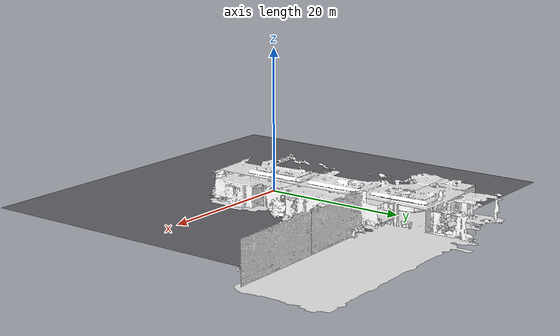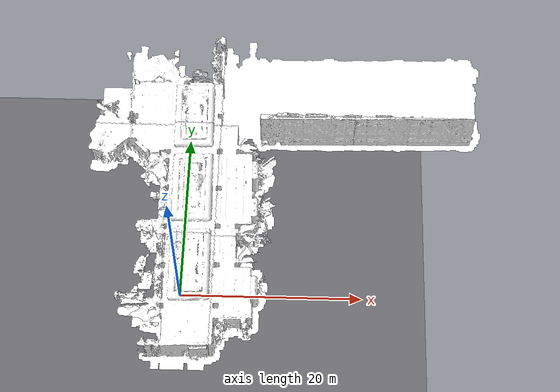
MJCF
<?xml version="1.0" encoding="UTF-8"?>
<mujoco model="mj_3dgs_15f">
  <compiler angle="radian" autolimits="true" texturedir="assets/"/>
  <option timestep="0.002" integrator="implicitfast" cone="elliptic" impratio="10"
          sdf_iterations="10" sdf_initpoints="20"/>

  <visual>
    <global offwidth="2400" offheight="1400"/>
    <headlight ambient="1.0 1.0 1.0" diffuse="0.0 0.0 0.0" specular="0 0 0"/>
    <quality shadowsize="4096"/>
  </visual>

  <extension>
    <plugin plugin="sdfvoxel.grid">
      <instance name="tile_00_00"><config key="path" value="assets/sdf/tile_00_00.npz"/></instance>
      <instance name="tile_00_01"><config key="path" value="assets/sdf/tile_00_01.npz"/></instance>
      <instance name="tile_00_02"><config key="path" value="assets/sdf/tile_00_02.npz"/></instance>
      <instance name="tile_00_03"><config key="path" value="assets/sdf/tile_00_03.npz"/></instance>
      <instance name="tile_00_04"><config key="path" value="assets/sdf/tile_00_04.npz"/></instance>
      <instance name="tile_00_05"><config key="path" value="assets/sdf/tile_00_05.npz"/></instance>
      <instance name="tile_01_00"><config key="path" value="assets/sdf/tile_01_00.npz"/></instance>
      <instance name="tile_01_01"><config key="path" value="assets/sdf/tile_01_01.npz"/></instance>
      <instance name="tile_01_02"><config key="path" value="assets/sdf/tile_01_02.npz"/></instance>
      <instance name="tile_01_03"><config key="path" value="assets/sdf/tile_01_03.npz"/></instance>
      <instance name="tile_01_04"><config key="path" value="assets/sdf/tile_01_04.npz"/></instance>
      <instance name="tile_01_05"><config key="path" value="assets/sdf/tile_01_05.npz"/></instance>
      <instance name="tile_02_00"><config key="path" value="assets/sdf/tile_02_00.npz"/></instance>
      <instance name="tile_02_01"><config key="path" value="assets/sdf/tile_02_01.npz"/></instance>
      <instance name="tile_02_02"><config key="path" value="assets/sdf/tile_02_02.npz"/></instance>
      <instance name="tile_02_03"><config key="path" value="assets/sdf/tile_02_03.npz"/></instance>
      <instance name="tile_02_04"><config key="path" value="assets/sdf/tile_02_04.npz"/></instance>
      <instance name="tile_02_05"><config key="path" value="assets/sdf/tile_02_05.npz"/></instance>
      <instance name="tile_03_00"><config key="path" value="assets/sdf/tile_03_00.npz"/></instance>
      <instance name="tile_03_01"><config key="path" value="assets/sdf/tile_03_01.npz"/></instance>
      <instance name="tile_03_02"><config key="path" value="assets/sdf/tile_03_02.npz"/></instance>
      <instance name="tile_03_03"><config key="path" value="assets/sdf/tile_03_03.npz"/></instance>
      <instance name="tile_03_04"><config key="path" value="assets/sdf/tile_03_04.npz"/></instance>
      <instance name="tile_03_05"><config key="path" value="assets/sdf/tile_03_05.npz"/></instance>
      <instance name="tile_04_00"><config key="path" value="assets/sdf/tile_04_00.npz"/></instance>
      <instance name="tile_04_01"><config key="path" value="assets/sdf/tile_04_01.npz"/></instance>
      <instance name="tile_04_02"><config key="path" value="assets/sdf/tile_04_02.npz"/></instance>
      <instance name="tile_04_03"><config key="path" value="assets/sdf/tile_04_03.npz"/></instance>
      <instance name="tile_04_04"><config key="path" value="assets/sdf/tile_04_04.npz"/></instance>
      <instance name="tile_04_05"><config key="path" value="assets/sdf/tile_04_05.npz"/></instance>
      <instance name="tile_05_00"><config key="path" value="assets/sdf/tile_05_00.npz"/></instance>
      <instance name="tile_05_01"><config key="path" value="assets/sdf/tile_05_01.npz"/></instance>
      <instance name="tile_05_02"><config key="path" value="assets/sdf/tile_05_02.npz"/></instance>
      <instance name="tile_05_03"><config key="path" value="assets/sdf/tile_05_03.npz"/></instance>
      <instance name="tile_05_04"><config key="path" value="assets/sdf/tile_05_04.npz"/></instance>
      <instance name="tile_05_05"><config key="path" value="assets/sdf/tile_05_05.npz"/></instance>
    </plugin>
  </extension>

  <default>
    <!-- passive environment: the robot carries conaffinity=1 and collides with
         this; the scene never self-collides. -->
    <default class="sdfcol">
      <geom group="3" contype="1" conaffinity="0" condim="3" friction="1 0.005 0.0001"
            solref="0.004 1" solimp="0.95 0.99 0.001" rgba="0.9 0.25 0.22 0.45"/>
    </default>
    <default class="vis">
      <geom group="0" contype="0" conaffinity="0" rgba="1 1 1 1"/>
    </default>
  </default>

  <asset>
    <texture name="fp_tex" type="2d" file="CH_floorpatch.png"/>
    <texture name="atlas" type="2d" file="CH_atlas.png"/>
    <material name="fp_mat" texture="fp_tex" specular="0" shininess="0" reflectance="0"/>
    <material name="scene_mat" texture="atlas" specular="0" shininess="0" reflectance="0"/>
    <mesh name="visual00" file="assets/vis_chunks/chunk_00_00.obj"/>
    <mesh name="visual01" file="assets/vis_chunks/chunk_00_01.obj"/>
    <mesh name="visual02" file="assets/vis_chunks/chunk_00_02.obj"/>
    <mesh name="visual03" file="assets/vis_chunks/chunk_01_00.obj"/>
    <mesh name="visual04" file="assets/vis_chunks/chunk_01_01.obj"/>
    <mesh name="visual05" file="assets/vis_chunks/chunk_01_02.obj"/>
    <mesh name="visual06" file="assets/vis_chunks/chunk_02_01.obj"/>
    <mesh name="visual07" file="assets/vis_chunks/chunk_02_02.obj"/>
    <mesh name="floorpatch" file="assets/CH_floorpatch.obj"/>
    <mesh name="m_tile_00_00"><plugin instance="tile_00_00"/></mesh>
    <mesh name="m_tile_00_01"><plugin instance="tile_00_01"/></mesh>
    <mesh name="m_tile_00_02"><plugin instance="tile_00_02"/></mesh>
    <mesh name="m_tile_00_03"><plugin instance="tile_00_03"/></mesh>
    <mesh name="m_tile_00_04"><plugin instance="tile_00_04"/></mesh>
    <mesh name="m_tile_00_05"><plugin instance="tile_00_05"/></mesh>
    <mesh name="m_tile_01_00"><plugin instance="tile_01_00"/></mesh>
    <mesh name="m_tile_01_01"><plugin instance="tile_01_01"/></mesh>
    <mesh name="m_tile_01_02"><plugin instance="tile_01_02"/></mesh>
    <mesh name="m_tile_01_03"><plugin instance="tile_01_03"/></mesh>
    <mesh name="m_tile_01_04"><plugin instance="tile_01_04"/></mesh>
    <mesh name="m_tile_01_05"><plugin instance="tile_01_05"/></mesh>
    <mesh name="m_tile_02_00"><plugin instance="tile_02_00"/></mesh>
    <mesh name="m_tile_02_01"><plugin instance="tile_02_01"/></mesh>
    <mesh name="m_tile_02_02"><plugin instance="tile_02_02"/></mesh>
    <mesh name="m_tile_02_03"><plugin instance="tile_02_03"/></mesh>
    <mesh name="m_tile_02_04"><plugin instance="tile_02_04"/></mesh>
    <mesh name="m_tile_02_05"><plugin instance="tile_02_05"/></mesh>
    <mesh name="m_tile_03_00"><plugin instance="tile_03_00"/></mesh>
    <mesh name="m_tile_03_01"><plugin instance="tile_03_01"/></mesh>
    <mesh name="m_tile_03_02"><plugin instance="tile_03_02"/></mesh>
    <mesh name="m_tile_03_03"><plugin instance="tile_03_03"/></mesh>
    <mesh name="m_tile_03_04"><plugin instance="tile_03_04"/></mesh>
    <mesh name="m_tile_03_05"><plugin instance="tile_03_05"/></mesh>
    <mesh name="m_tile_04_00"><plugin instance="tile_04_00"/></mesh>
    <mesh name="m_tile_04_01"><plugin instance="tile_04_01"/></mesh>
    <mesh name="m_tile_04_02"><plugin instance="tile_04_02"/></mesh>
    <mesh name="m_tile_04_03"><plugin instance="tile_04_03"/></mesh>
    <mesh name="m_tile_04_04"><plugin instance="tile_04_04"/></mesh>
    <mesh name="m_tile_04_05"><plugin instance="tile_04_05"/></mesh>
    <mesh name="m_tile_05_00"><plugin instance="tile_05_00"/></mesh>
    <mesh name="m_tile_05_01"><plugin instance="tile_05_01"/></mesh>
    <mesh name="m_tile_05_02"><plugin instance="tile_05_02"/></mesh>
    <mesh name="m_tile_05_03"><plugin instance="tile_05_03"/></mesh>
    <mesh name="m_tile_05_04"><plugin instance="tile_05_04"/></mesh>
    <mesh name="m_tile_05_05"><plugin instance="tile_05_05"/></mesh>
  </asset>

  <worldbody>
    <light pos="-3 3 6" dir="0 0 -1" directional="true" diffuse="0.35 0.35 0.35"
           specular="0 0 0" castshadow="false"/>
    <geom name="floor" type="plane" pos="0 0 -0.270" size="27 26 0.1"
          group="3" rgba="0 0 0 0" contype="1" conaffinity="0" condim="3"
          friction="1 0.005 0.0001" solref="0.004 1" solimp="0.95 0.99 0.001"/>
    <geom name="floor_backing" type="plane" pos="0 0 -0.370" size="27 26 0.1"
          rgba="0.42 0.42 0.44 1" group="0" contype="0" conaffinity="0"/>
    <body name="body_vis00">
      <geom name="ob_vis00" class="vis" type="mesh" mesh="visual00" material="scene_mat" rgba="1 1 1 1"/>
    </body>
    <body name="body_vis01">
      <geom name="ob_vis01" class="vis" type="mesh" mesh="visual01" material="scene_mat" rgba="1 1 1 1"/>
    </body>
    <body name="body_vis02">
      <geom name="ob_vis02" class="vis" type="mesh" mesh="visual02" material="scene_mat" rgba="1 1 1 1"/>
    </body>
    <body name="body_vis03">
      <geom name="ob_vis03" class="vis" type="mesh" mesh="visual03" material="scene_mat" rgba="1 1 1 1"/>
    </body>
    <body name="body_vis04">
      <geom name="ob_vis04" class="vis" type="mesh" mesh="visual04" material="scene_mat" rgba="1 1 1 1"/>
    </body>
    <body name="body_vis05">
      <geom name="ob_vis05" class="vis" type="mesh" mesh="visual05" material="scene_mat" rgba="1 1 1 1"/>
    </body>
    <body name="body_vis06">
      <geom name="ob_vis06" class="vis" type="mesh" mesh="visual06" material="scene_mat" rgba="1 1 1 1"/>
    </body>
    <body name="body_vis07">
      <geom name="ob_vis07" class="vis" type="mesh" mesh="visual07" material="scene_mat" rgba="1 1 1 1"/>
      <geom name="ob_floorpatch" class="vis" type="mesh" mesh="floorpatch" material="fp_mat" rgba="1 1 1 1"/>
    </body>
    <body name="b_tile_00_00">
      <geom name="g_tile_00_00" class="sdfcol" type="sdf" mesh="m_tile_00_00">
        <plugin instance="tile_00_00"/>
      </geom>
    </body>
    <body name="b_tile_00_01">
      <geom name="g_tile_00_01" class="sdfcol" type="sdf" mesh="m_tile_00_01">
        <plugin instance="tile_00_01"/>
      </geom>
    </body>
    <body name="b_tile_00_02">
      <geom name="g_tile_00_02" class="sdfcol" type="sdf" mesh="m_tile_00_02">
        <plugin instance="tile_00_02"/>
      </geom>
    </body>
    <body name="b_tile_00_03">
      <geom name="g_tile_00_03" class="sdfcol" type="sdf" mesh="m_tile_00_03">
        <plugin instance="tile_00_03"/>
      </geom>
    </body>
    <body name="b_tile_00_04">
      <geom name="g_tile_00_04" class="sdfcol" type="sdf" mesh="m_tile_00_04">
        <plugin instance="tile_00_04"/>
      </geom>
    </body>
    <body name="b_tile_00_05">
      <geom name="g_tile_00_05" class="sdfcol" type="sdf" mesh="m_tile_00_05">
        <plugin instance="tile_00_05"/>
      </geom>
    </body>
    <body name="b_tile_01_00">
      <geom name="g_tile_01_00" class="sdfcol" type="sdf" mesh="m_tile_01_00">
        <plugin instance="tile_01_00"/>
      </geom>
    </body>
    <body name="b_tile_01_01">
      <geom name="g_tile_01_01" class="sdfcol" type="sdf" mesh="m_tile_01_01">
        <plugin instance="tile_01_01"/>
      </geom>
    </body>
    <body name="b_tile_01_02">
      <geom name="g_tile_01_02" class="sdfcol" type="sdf" mesh="m_tile_01_02">
        <plugin instance="tile_01_02"/>
      </geom>
    </body>
    <body name="b_tile_01_03">
      <geom name="g_tile_01_03" class="sdfcol" type="sdf" mesh="m_tile_01_03">
        <plugin instance="tile_01_03"/>
      </geom>
    </body>
    <body name="b_tile_01_04">
      <geom name="g_tile_01_04" class="sdfcol" type="sdf" mesh="m_tile_01_04">
        <plugin instance="tile_01_04"/>
      </geom>
    </body>
    <body name="b_tile_01_05">
      <geom name="g_tile_01_05" class="sdfcol" type="sdf" mesh="m_tile_01_05">
        <plugin instance="tile_01_05"/>
      </geom>
    </body>
    <body name="b_tile_02_00">
      <geom name="g_tile_02_00" class="sdfcol" type="sdf" mesh="m_tile_02_00">
        <plugin instance="tile_02_00"/>
      </geom>
    </body>
    <body name="b_tile_02_01">
      <geom name="g_tile_02_01" class="sdfcol" type="sdf" mesh="m_tile_02_01">
        <plugin instance="tile_02_01"/>
      </geom>
    </body>
    <body name="b_tile_02_02">
      <geom name="g_tile_02_02" class="sdfcol" type="sdf" mesh="m_tile_02_02">
        <plugin instance="tile_02_02"/>
      </geom>
    </body>
    <body name="b_tile_02_03">
      <geom name="g_tile_02_03" class="sdfcol" type="sdf" mesh="m_tile_02_03">
        <plugin instance="tile_02_03"/>
      </geom>
    </body>
    <body name="b_tile_02_04">
      <geom name="g_tile_02_04" class="sdfcol" type="sdf" mesh="m_tile_02_04">
        <plugin instance="tile_02_04"/>
      </geom>
    </body>
    <body name="b_tile_02_05">
      <geom name="g_tile_02_05" class="sdfcol" type="sdf" mesh="m_tile_02_05">
        <plugin instance="tile_02_05"/>
      </geom>
    </body>
    <body name="b_tile_03_00">
      <geom name="g_tile_03_00" class="sdfcol" type="sdf" mesh="m_tile_03_00">
        <plugin instance="tile_03_00"/>
      </geom>
    </body>
    <body name="b_tile_03_01">
      <geom name="g_tile_03_01" class="sdfcol" type="sdf" mesh="m_tile_03_01">
        <plugin instance="tile_03_01"/>
      </geom>
    </body>
    <body name="b_tile_03_02">
      <geom name="g_tile_03_02" class="sdfcol" type="sdf" mesh="m_tile_03_02">
        <plugin instance="tile_03_02"/>
      </geom>
    </body>
    <body name="b_tile_03_03">
      <geom name="g_tile_03_03" class="sdfcol" type="sdf" mesh="m_tile_03_03">
        <plugin instance="tile_03_03"/>
      </geom>
    </body>
    <body name="b_tile_03_04">
      <geom name="g_tile_03_04" class="sdfcol" type="sdf" mesh="m_tile_03_04">
        <plugin instance="tile_03_04"/>
      </geom>
    </body>
    <body name="b_tile_03_05">
      <geom name="g_tile_03_05" class="sdfcol" type="sdf" mesh="m_tile_03_05">
        <plugin instance="tile_03_05"/>
      </geom>
    </body>
    <body name="b_tile_04_00">
      <geom name="g_tile_04_00" class="sdfcol" type="sdf" mesh="m_tile_04_00">
        <plugin instance="tile_04_00"/>
      </geom>
    </body>
    <body name="b_tile_04_01">
      <geom name="g_tile_04_01" class="sdfcol" type="sdf" mesh="m_tile_04_01">
        <plugin instance="tile_04_01"/>
      </geom>
    </body>
    <body name="b_tile_04_02">
      <geom name="g_tile_04_02" class="sdfcol" type="sdf" mesh="m_tile_04_02">
        <plugin instance="tile_04_02"/>
      </geom>
    </body>
    <body name="b_tile_04_03">
      <geom name="g_tile_04_03" class="sdfcol" type="sdf" mesh="m_tile_04_03">
        <plugin instance="tile_04_03"/>
      </geom>
    </body>
    <body name="b_tile_04_04">
      <geom name="g_tile_04_04" class="sdfcol" type="sdf" mesh="m_tile_04_04">
        <plugin instance="tile_04_04"/>
      </geom>
    </body>
    <body name="b_tile_04_05">
      <geom name="g_tile_04_05" class="sdfcol" type="sdf" mesh="m_tile_04_05">
        <plugin instance="tile_04_05"/>
      </geom>
    </body>
    <body name="b_tile_05_00">
      <geom name="g_tile_05_00" class="sdfcol" type="sdf" mesh="m_tile_05_00">
        <plugin instance="tile_05_00"/>
      </geom>
    </body>
    <body name="b_tile_05_01">
      <geom name="g_tile_05_01" class="sdfcol" type="sdf" mesh="m_tile_05_01">
        <plugin instance="tile_05_01"/>
      </geom>
    </body>
    <body name="b_tile_05_02">
      <geom name="g_tile_05_02" class="sdfcol" type="sdf" mesh="m_tile_05_02">
        <plugin instance="tile_05_02"/>
      </geom>
    </body>
    <body name="b_tile_05_03">
      <geom name="g_tile_05_03" class="sdfcol" type="sdf" mesh="m_tile_05_03">
        <plugin instance="tile_05_03"/>
      </geom>
    </body>
    <body name="b_tile_05_04">
      <geom name="g_tile_05_04" class="sdfcol" type="sdf" mesh="m_tile_05_04">
        <plugin instance="tile_05_04"/>
      </geom>
    </body>
    <body name="b_tile_05_05">
      <geom name="g_tile_05_05" class="sdfcol" type="sdf" mesh="m_tile_05_05">
        <plugin instance="tile_05_05"/>
      </geom>
    </body>
  </worldbody>
</mujoco>
